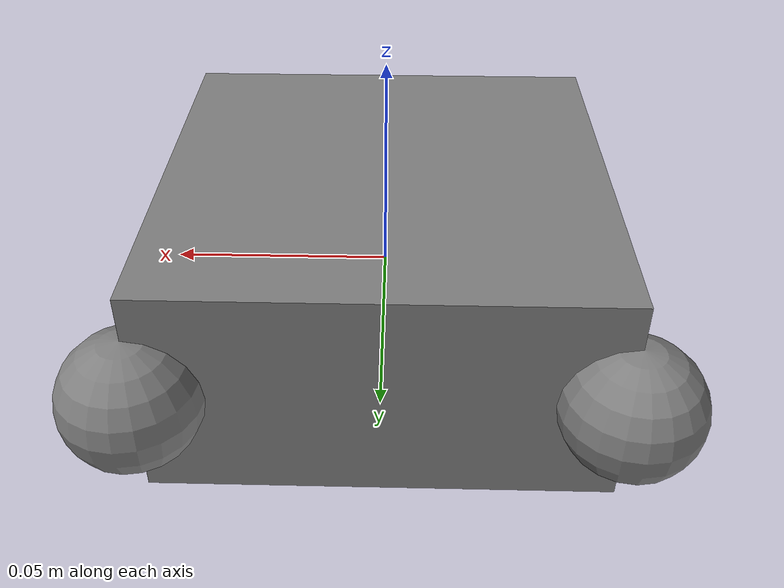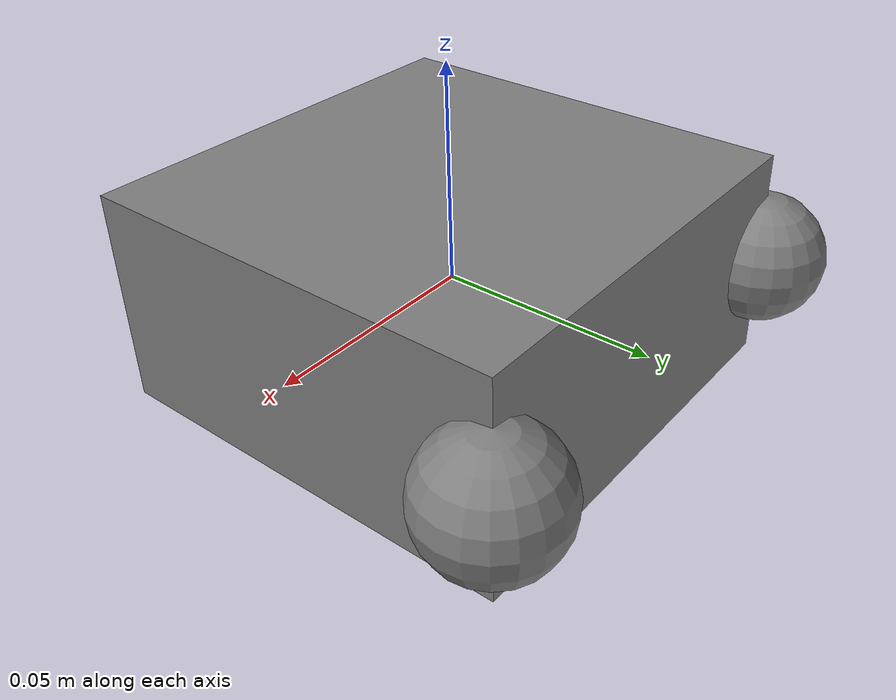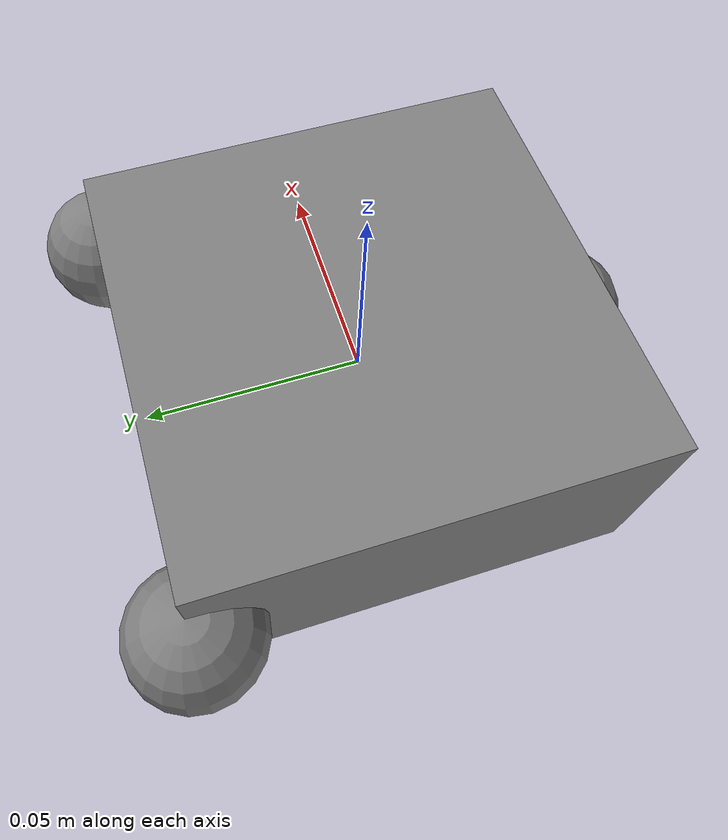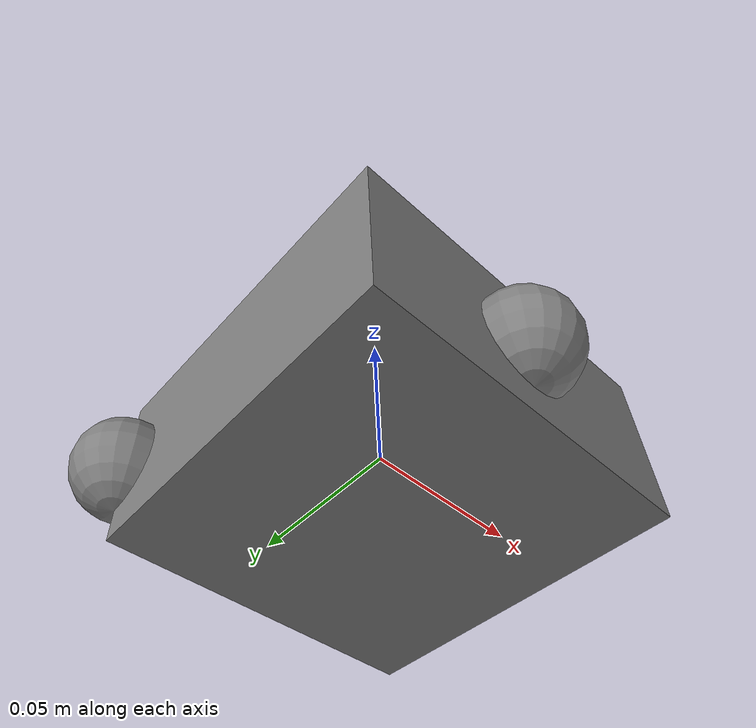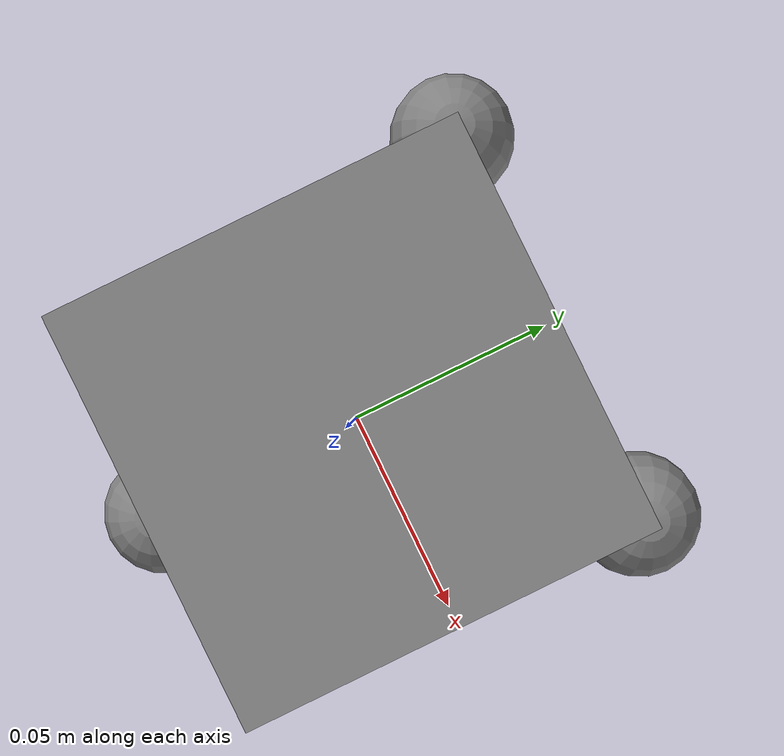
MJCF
<mujoco model="shape_square">
  <worldbody>
    <body name="shape">
      <geom name="plate" type="box" size="0.05 0.05 0.025" pos="0.0 0.0 0.0" />
      <site name="attractor_site1" pos="0.05 0.05 0.0" size="0.015" />
      <site name="attractor_site2" pos="-0.05 0.05 0.0" size="0.015" />
      <site name="attractor_site3" pos="0.0 -0.05 0.0" size="0.015" />
    </body>
  </worldbody>
</mujoco>
